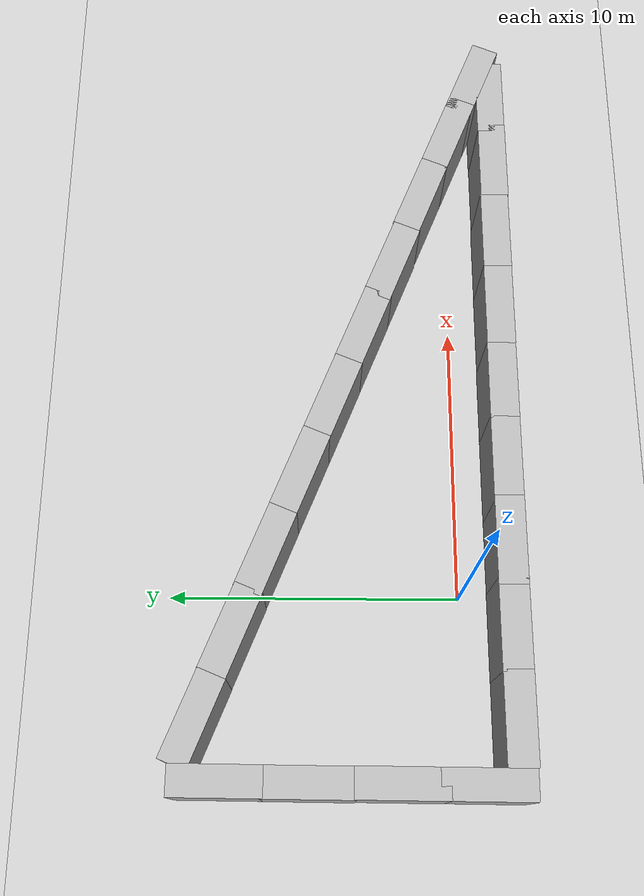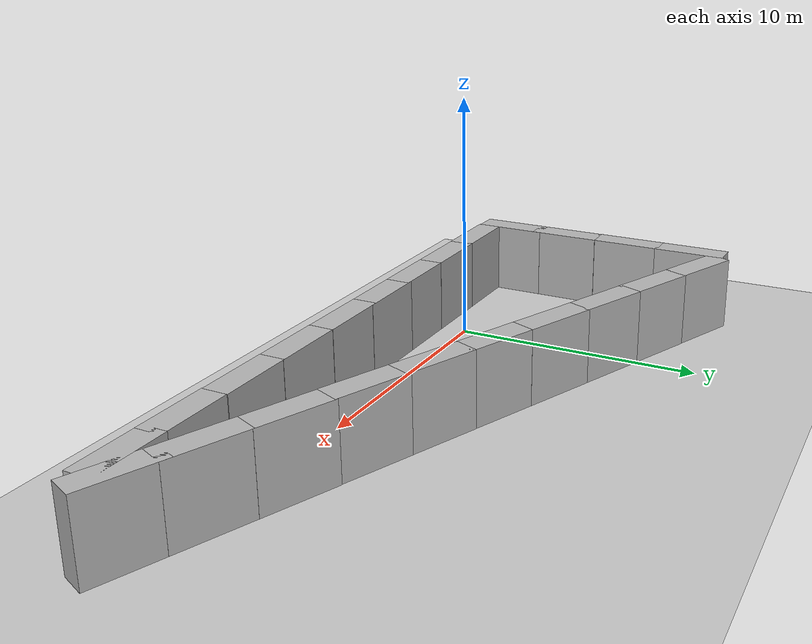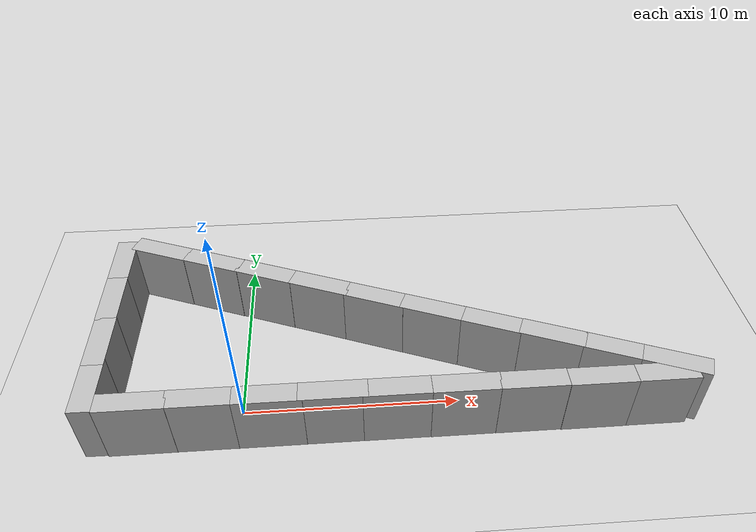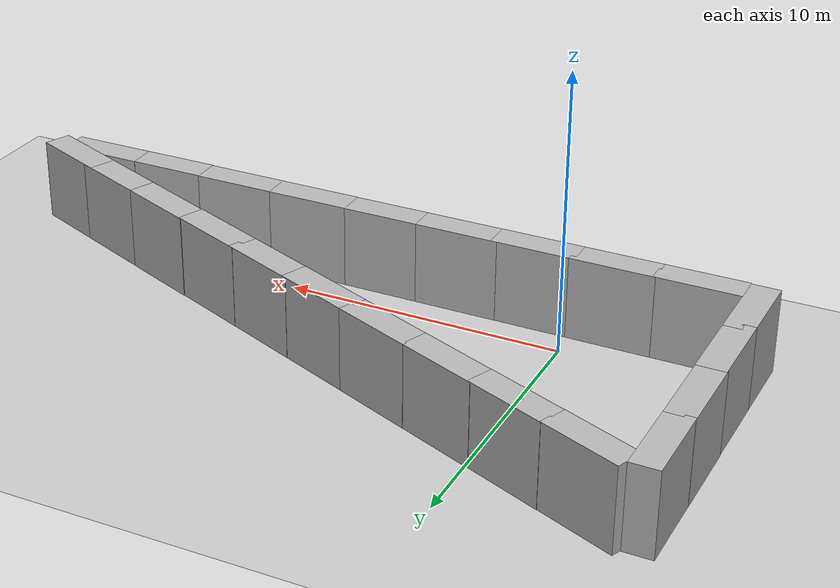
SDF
<sdf version="1.6">
 <world name="default">
  <light name="sun" type="directional">
   <pose>0 0 10 0 -0 0</pose>
   <diffuse>0.8 0.8 0.8 1</diffuse>
   <specular>0.2 0.2 0.2 1</specular>
   <attenuation>
    <range>1000</range>
    <constant>0.9</constant>
    <linear>0.01</linear>
    <quadratic>0.001</quadratic>
   </attenuation>
   <direction>-0.5 0.1 -0.9</direction>
  </light>
  <model name="ground_plane">
   <static>1</static>
   <link name="link">
    <collision name="collision">
     <geometry><plane><normal>0 0 1</normal><size>100 100</size></plane></geometry>
     <surface><friction><ode><mu>100</mu><mu2>50</mu2></ode></friction></surface>
    </collision>
    <visual name="visual">
     <cast_shadows>0</cast_shadows>
     <geometry><plane><normal>0 0 1</normal><size>100 100</size></plane></geometry>
     <material>
      <script><uri>file://media/materials/scripts/gazebo.material</uri><name>Gazebo/Grey</name></script>
     </material>
    </visual>
   </link>
  </model>
  <gravity>0 0 -9.8</gravity>
  <magnetic_field>6e-06 2.3e-05 -4.2e-05</magnetic_field>
  <atmosphere type="adiabatic"/>
  <physics name="default_physics" default="0" type="ode">
   <max_step_size>0.001</max_step_size>
   <real_time_factor>1</real_time_factor>
   <real_time_update_rate>1000</real_time_update_rate>
  </physics>
  <scene><ambient>0.4 0.4 0.4 1</ambient><background>0.7 0.7 0.7 1</background><shadows>1</shadows></scene>
  <spherical_coordinates>
   <surface_model>EARTH_WGS84</surface_model>
   <latitude_deg>0</latitude_deg>
   <longitude_deg>0</longitude_deg>
   <elevation>0</elevation>
   <heading_deg>0</heading_deg>
  </spherical_coordinates>
  <model name="brick_box_3x1x3">
   <static>1</static>
   <link name="chassis">
    <pose>0 0 1.5 0 -0 0</pose>
    <collision name="collision"><geometry><box><size>3 1 3</size></box></geometry></collision>
    <visual name="visual">
     <geometry><mesh><uri>model://brick_box_3x1x3/meshes/simple_box.dae</uri><scale>3 1 3</scale></mesh></geometry>
     <material>
      <script>
       <uri>model://brick_box_3x1x3/materials/scripts</uri>
       <uri>model://brick_box_3x1x3/materials/textures</uri>
       <name>BrickBox/Diffuse</name>
      </script>
     </material>
    </visual>
   </link>
   <pose>1.47272 -1.50997 0 0 -0 0</pose>
  </model>
  <model name="brick_box_3x1x3_clone">
   <static>1</static>
   <link name="chassis">
    <pose>0 0 1.5 0 -0 0</pose>
    <collision name="collision"><geometry><box><size>3 1 3</size></box></geometry></collision>
    <visual name="visual">
     <geometry><mesh><uri>model://brick_box_3x1x3/meshes/simple_box.dae</uri><scale>3 1 3</scale></mesh></geometry>
     <material>
      <script>
       <uri>model://brick_box_3x1x3/materials/scripts</uri>
       <uri>model://brick_box_3x1x3/materials/textures</uri>
       <name>BrickBox/Diffuse</name>
      </script>
     </material>
    </visual>
   </link>
   <pose>4.25899 -1.50704 0 0 -0 0</pose>
  </model>
  <model name="brick_box_3x1x3_clone_clone">
   <static>1</static>
   <link name="chassis">
    <pose>0 0 1.5 0 -0 0</pose>
    <collision name="collision"><geometry><box><size>3 1 3</size></box></geometry></collision>
    <visual name="visual">
     <geometry><mesh><uri>model://brick_box_3x1x3/meshes/simple_box.dae</uri><scale>3 1 3</scale></mesh></geometry>
     <material>
      <script>
       <uri>model://brick_box_3x1x3/materials/scripts</uri>
       <uri>model://brick_box_3x1x3/materials/textures</uri>
       <name>BrickBox/Diffuse</name>
      </script>
     </material>
    </visual>
   </link>
   <pose>7.00319 -1.51143 0 0 -0 0</pose>
  </model>
  <model name="brick_box_3x1x3_clone_0">
   <static>1</static>
   <link name="chassis">
    <pose>0 0 1.5 0 -0 0</pose>
    <collision name="collision"><geometry><box><size>3 1 3</size></box></geometry></collision>
    <visual name="visual">
     <geometry><mesh><uri>model://brick_box_3x1x3/meshes/simple_box.dae</uri><scale>3 1 3</scale></mesh></geometry>
     <material>
      <script>
       <uri>model://brick_box_3x1x3/materials/scripts</uri>
       <uri>model://brick_box_3x1x3/materials/textures</uri>
       <name>BrickBox/Diffuse</name>
      </script>
     </material>
    </visual>
   </link>
   <pose>-1.3201 -1.50666 0 0 -0 0</pose>
  </model>
  <model name="brick_box_3x1x3_clone_0_clone">
   <static>1</static>
   <link name="chassis">
    <pose>0 0 1.5 0 -0 0</pose>
    <collision name="collision"><geometry><box><size>3 1 3</size></box></geometry></collision>
    <visual name="visual">
     <geometry><mesh><uri>model://brick_box_3x1x3/meshes/simple_box.dae</uri><scale>3 1 3</scale></mesh></geometry>
     <material>
      <script>
       <uri>model://brick_box_3x1x3/materials/scripts</uri>
       <uri>model://brick_box_3x1x3/materials/textures</uri>
       <name>BrickBox/Diffuse</name>
      </script>
     </material>
    </visual>
   </link>
   <pose>-4.22759 -1.51115 0 0 -0 0</pose>
  </model>
  <model name="brick_box_3x1x3_clone_0_clone_clone">
   <static>1</static>
   <link name="chassis">
    <pose>0 0 1.5 0 -0 0</pose>
    <collision name="collision"><geometry><box><size>3 1 3</size></box></geometry></collision>
    <visual name="visual">
     <geometry><mesh><uri>model://brick_box_3x1x3/meshes/simple_box.dae</uri><scale>3 1 3</scale></mesh></geometry>
     <material>
      <script>
       <uri>model://brick_box_3x1x3/materials/scripts</uri>
       <uri>model://brick_box_3x1x3/materials/textures</uri>
       <name>BrickBox/Diffuse</name>
      </script>
     </material>
    </visual>
   </link>
   <pose>-6.21352 -0.457261 0 0 -0 1.56297</pose>
  </model>
  <model name="brick_box_3x1x3_clone_0_clone_clone_clone">
   <static>1</static>
   <link name="chassis">
    <pose>0 0 1.5 0 -0 0</pose>
    <collision name="collision"><geometry><box><size>3 1 3</size></box></geometry></collision>
    <visual name="visual">
     <geometry><mesh><uri>model://brick_box_3x1x3/meshes/simple_box.dae</uri><scale>3 1 3</scale></mesh></geometry>
     <material>
      <script>
       <uri>model://brick_box_3x1x3/materials/scripts</uri>
       <uri>model://brick_box_3x1x3/materials/textures</uri>
       <name>BrickBox/Diffuse</name>
      </script>
     </material>
    </visual>
   </link>
   <pose>-6.19539 2.21421 0 0 -0 1.56297</pose>
  </model>
  <model name="brick_box_3x1x3_clone_0_clone_clone_clone_0">
   <static>1</static>
   <link name="chassis">
    <pose>0 0 1.5 0 -0 0</pose>
    <collision name="collision"><geometry><box><size>3 1 3</size></box></geometry></collision>
    <visual name="visual">
     <geometry><mesh><uri>model://brick_box_3x1x3/meshes/simple_box.dae</uri><scale>3 1 3</scale></mesh></geometry>
     <material>
      <script>
       <uri>model://brick_box_3x1x3/materials/scripts</uri>
       <uri>model://brick_box_3x1x3/materials/textures</uri>
       <name>BrickBox/Diffuse</name>
      </script>
     </material>
    </visual>
   </link>
   <pose>-6.18844 5.11901 0 0 -0 1.56297</pose>
  </model>
  <model name="brick_box_3x1x3_clone_0_clone_clone_clone_0_clone">
   <static>1</static>
   <link name="chassis">
    <pose>0 0 1.5 0 -0 0</pose>
    <collision name="collision"><geometry><box><size>3 1 3</size></box></geometry></collision>
    <visual name="visual">
     <geometry><mesh><uri>model://brick_box_3x1x3/meshes/simple_box.dae</uri><scale>3 1 3</scale></mesh></geometry>
     <material>
      <script>
       <uri>model://brick_box_3x1x3/materials/scripts</uri>
       <uri>model://brick_box_3x1x3/materials/textures</uri>
       <name>BrickBox/Diffuse</name>
      </script>
     </material>
    </visual>
   </link>
   <pose>-6.16299 8.00832 0 0 -0 1.56297</pose>
  </model>
  <model name="brick_box_3x1x3_clone_0_clone_clone_clone_0_clone_clone">
   <static>1</static>
   <link name="chassis">
    <pose>0 0 1.5 0 -0 0</pose>
    <collision name="collision"><geometry><box><size>3 1 3</size></box></geometry></collision>
    <visual name="visual">
     <geometry><mesh><uri>model://brick_box_3x1x3/meshes/simple_box.dae</uri><scale>3 1 3</scale></mesh></geometry>
     <material>
      <script>
       <uri>model://brick_box_3x1x3/materials/scripts</uri>
       <uri>model://brick_box_3x1x3/materials/textures</uri>
       <name>BrickBox/Diffuse</name>
      </script>
     </material>
    </visual>
   </link>
   <pose>-4.31403 8.7825 0 0 0 -0.389346</pose>
  </model>
  <model name="brick_box_3x1x3_clone_0_clone_clone_clone_0_clone_clone_clone">
   <static>1</static>
   <link name="chassis">
    <pose>0 0 1.5 0 -0 0</pose>
    <collision name="collision"><geometry><box><size>3 1 3</size></box></geometry></collision>
    <visual name="visual">
     <geometry><mesh><uri>model://brick_box_3x1x3/meshes/simple_box.dae</uri><scale>3 1 3</scale></mesh></geometry>
     <material>
      <script>
       <uri>model://brick_box_3x1x3/materials/scripts</uri>
       <uri>model://brick_box_3x1x3/materials/textures</uri>
       <name>BrickBox/Diffuse</name>
      </script>
     </material>
    </visual>
   </link>
   <pose>-1.57624 7.67227 0 0 0 -0.389346</pose>
  </model>
  <model name="brick_box_3x1x3_clone_0_clone_clone_clone_0_clone_clone_clone_0">
   <static>1</static>
   <link name="chassis">
    <pose>0 0 1.5 0 -0 0</pose>
    <collision name="collision"><geometry><box><size>3 1 3</size></box></geometry></collision>
    <visual name="visual">
     <geometry><mesh><uri>model://brick_box_3x1x3/meshes/simple_box.dae</uri><scale>3 1 3</scale></mesh></geometry>
     <material>
      <script>
       <uri>model://brick_box_3x1x3/materials/scripts</uri>
       <uri>model://brick_box_3x1x3/materials/textures</uri>
       <name>BrickBox/Diffuse</name>
      </script>
     </material>
    </visual>
   </link>
   <pose>1.08605 6.59459 0 0 0 -0.389346</pose>
  </model>
  <model name="brick_box_3x1x3_clone_0_clone_clone_clone_0_clone_clone_clone_1">
   <static>1</static>
   <link name="chassis">
    <pose>0 0 1.5 0 -0 0</pose>
    <collision name="collision"><geometry><box><size>3 1 3</size></box></geometry></collision>
    <visual name="visual">
     <geometry><mesh><uri>model://brick_box_3x1x3/meshes/simple_box.dae</uri><scale>3 1 3</scale></mesh></geometry>
     <material>
      <script>
       <uri>model://brick_box_3x1x3/materials/scripts</uri>
       <uri>model://brick_box_3x1x3/materials/textures</uri>
       <name>BrickBox/Diffuse</name>
      </script>
     </material>
    </visual>
   </link>
   <pose>3.799 5.48783 0 0 0 -0.389346</pose>
  </model>
  <model name="brick_box_3x1x3_clone_0_clone_clone_clone_0_clone_clone_clone_2">
   <static>1</static>
   <link name="chassis">
    <pose>0 0 1.5 0 -0 0</pose>
    <collision name="collision"><geometry><box><size>3 1 3</size></box></geometry></collision>
    <visual name="visual">
     <geometry><mesh><uri>model://brick_box_3x1x3/meshes/simple_box.dae</uri><scale>3 1 3</scale></mesh></geometry>
     <material>
      <script>
       <uri>model://brick_box_3x1x3/materials/scripts</uri>
       <uri>model://brick_box_3x1x3/materials/textures</uri>
       <name>BrickBox/Diffuse</name>
      </script>
     </material>
    </visual>
   </link>
   <pose>6.46376 4.39274 0 0 0 -0.389346</pose>
  </model>
  <model name="brick_box_3x1x3_clone_0_clone_clone_clone_0_clone_clone_clone_3">
   <static>1</static>
   <link name="chassis">
    <pose>0 0 1.5 0 -0 0</pose>
    <collision name="collision"><geometry><box><size>3 1 3</size></box></geometry></collision>
    <visual name="visual">
     <geometry><mesh><uri>model://brick_box_3x1x3/meshes/simple_box.dae</uri><scale>3 1 3</scale></mesh></geometry>
     <material>
      <script>
       <uri>model://brick_box_3x1x3/materials/scripts</uri>
       <uri>model://brick_box_3x1x3/materials/textures</uri>
       <name>BrickBox/Diffuse</name>
      </script>
     </material>
    </visual>
   </link>
   <pose>9.07428 3.32815 0 0 0 -0.389346</pose>
  </model>
  <model name="brick_box_3x1x3_clone_0_clone_clone_clone_0_clone_clone_clone_4">
   <static>1</static>
   <link name="chassis">
    <pose>0 0 1.5 0 -0 0</pose>
    <collision name="collision"><geometry><box><size>3 1 3</size></box></geometry></collision>
    <visual name="visual">
     <geometry><mesh><uri>model://brick_box_3x1x3/meshes/simple_box.dae</uri><scale>3 1 3</scale></mesh></geometry>
     <material>
      <script>
       <uri>model://brick_box_3x1x3/materials/scripts</uri>
       <uri>model://brick_box_3x1x3/materials/textures</uri>
       <name>BrickBox/Diffuse</name>
      </script>
     </material>
    </visual>
   </link>
   <pose>11.6848 2.26379 0 0 0 -0.389346</pose>
  </model>
  <model name="brick_box_3x1x3_clone_0_clone_clone_clone_0_clone_clone_clone_5">
   <static>1</static>
   <link name="chassis">
    <pose>0 0 1.5 0 -0 0</pose>
    <collision name="collision"><geometry><box><size>3 1 3</size></box></geometry></collision>
    <visual name="visual">
     <geometry><mesh><uri>model://brick_box_3x1x3/meshes/simple_box.dae</uri><scale>3 1 3</scale></mesh></geometry>
     <material>
      <script>
       <uri>model://brick_box_3x1x3/materials/scripts</uri>
       <uri>model://brick_box_3x1x3/materials/textures</uri>
       <name>BrickBox/Diffuse</name>
      </script>
     </material>
    </visual>
   </link>
   <pose>14.3744 1.18536 0 0 0 -0.389346</pose>
  </model>
  <model name="brick_box_3x1x3_clone_0_clone_clone_clone_0_clone_clone_clone_6">
   <static>1</static>
   <link name="chassis">
    <pose>0 0 1.5 0 -0 0</pose>
    <collision name="collision"><geometry><box><size>3 1 3</size></box></geometry></collision>
    <visual name="visual">
     <geometry><mesh><uri>model://brick_box_3x1x3/meshes/simple_box.dae</uri><scale>3 1 3</scale></mesh></geometry>
     <material>
      <script>
       <uri>model://brick_box_3x1x3/materials/scripts</uri>
       <uri>model://brick_box_3x1x3/materials/textures</uri>
       <name>BrickBox/Diffuse</name>
      </script>
     </material>
    </visual>
   </link>
   <pose>17.0825 0.070835 0 0 0 -0.389346</pose>
  </model>
  <model name="brick_box_3x1x3_clone_clone_clone">
   <static>1</static>
   <link name="chassis">
    <pose>0 0 1.5 0 -0 0</pose>
    <collision name="collision"><geometry><box><size>3 1 3</size></box></geometry></collision>
    <visual name="visual">
     <geometry><mesh><uri>model://brick_box_3x1x3/meshes/simple_box.dae</uri><scale>3 1 3</scale></mesh></geometry>
     <material>
      <script>
       <uri>model://brick_box_3x1x3/materials/scripts</uri>
       <uri>model://brick_box_3x1x3/materials/textures</uri>
       <name>BrickBox/Diffuse</name>
      </script>
     </material>
    </visual>
   </link>
   <pose>9.99077 -1.52274 0 0 -0 0</pose>
  </model>
  <model name="brick_box_3x1x3_clone_clone_clone_0">
   <static>1</static>
   <link name="chassis">
    <pose>0 0 1.5 0 -0 0</pose>
    <collision name="collision"><geometry><box><size>3 1 3</size></box></geometry></collision>
    <visual name="visual">
     <geometry><mesh><uri>model://brick_box_3x1x3/meshes/simple_box.dae</uri><scale>3 1 3</scale></mesh></geometry>
     <material>
      <script>
       <uri>model://brick_box_3x1x3/materials/scripts</uri>
       <uri>model://brick_box_3x1x3/materials/textures</uri>
       <name>BrickBox/Diffuse</name>
      </script>
     </material>
    </visual>
   </link>
   <pose>12.9247 -1.53067 0 0 -0 0</pose>
  </model>
  <model name="brick_box_3x1x3_clone_clone_clone_1">
   <static>1</static>
   <link name="chassis">
    <pose>0 0 1.5 0 -0 0</pose>
    <collision name="collision"><geometry><box><size>3 1 3</size></box></geometry></collision>
    <visual name="visual">
     <geometry><mesh><uri>model://brick_box_3x1x3/meshes/simple_box.dae</uri><scale>3 1 3</scale></mesh></geometry>
     <material>
      <script>
       <uri>model://brick_box_3x1x3/materials/scripts</uri>
       <uri>model://brick_box_3x1x3/materials/textures</uri>
       <name>BrickBox/Diffuse</name>
      </script>
     </material>
    </visual>
   </link>
   <pose>15.91 -1.55401 0 0 -0 0</pose>
  </model>
  <model name="brick_box_3x1x3_clone_clone_clone_2">
   <static>1</static>
   <link name="chassis">
    <pose>0 0 1.5 0 -0 0</pose>
    <collision name="collision"><geometry><box><size>3 1 3</size></box></geometry></collision>
    <visual name="visual">
     <geometry><mesh><uri>model://brick_box_3x1x3/meshes/simple_box.dae</uri><scale>3 1 3</scale></mesh></geometry>
     <material>
      <script>
       <uri>model://brick_box_3x1x3/materials/scripts</uri>
       <uri>model://brick_box_3x1x3/materials/textures</uri>
       <name>BrickBox/Diffuse</name>
      </script>
     </material>
    </visual>
   </link>
   <pose>18.6532 -1.54554 0 0 -0 0</pose>
  </model>
  <model name="brick_box_3x1x3_clone_0_clone_clone_clone_0_clone_clone_clone_6_clone">
   <static>1</static>
   <link name="chassis">
    <pose>0 0 1.5 0 -0 0</pose>
    <collision name="collision"><geometry><box><size>3 1 3</size></box></geometry></collision>
    <visual name="visual">
     <geometry><mesh><uri>model://brick_box_3x1x3/meshes/simple_box.dae</uri><scale>3 1 3</scale></mesh></geometry>
     <material>
      <script>
       <uri>model://brick_box_3x1x3/materials/scripts</uri>
       <uri>model://brick_box_3x1x3/materials/textures</uri>
       <name>BrickBox/Diffuse</name>
      </script>
     </material>
    </visual>
   </link>
   <pose>19.4592 -0.906303 0 0 0 -0.389346</pose>
  </model>
 </world>
</sdf>
